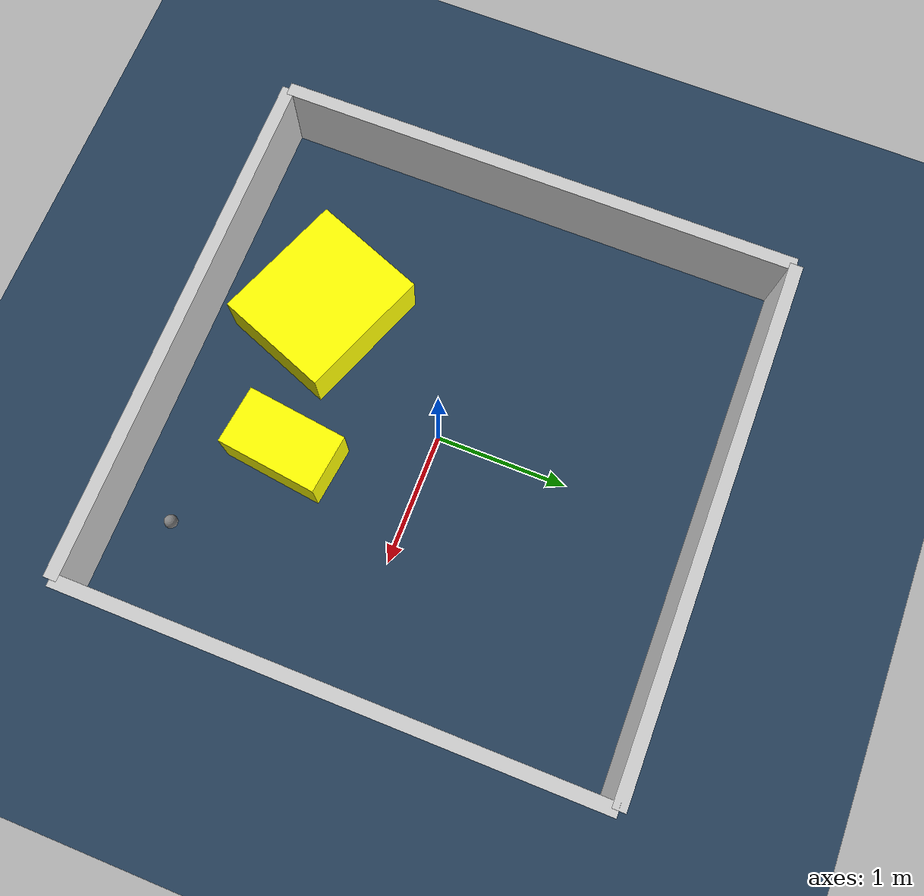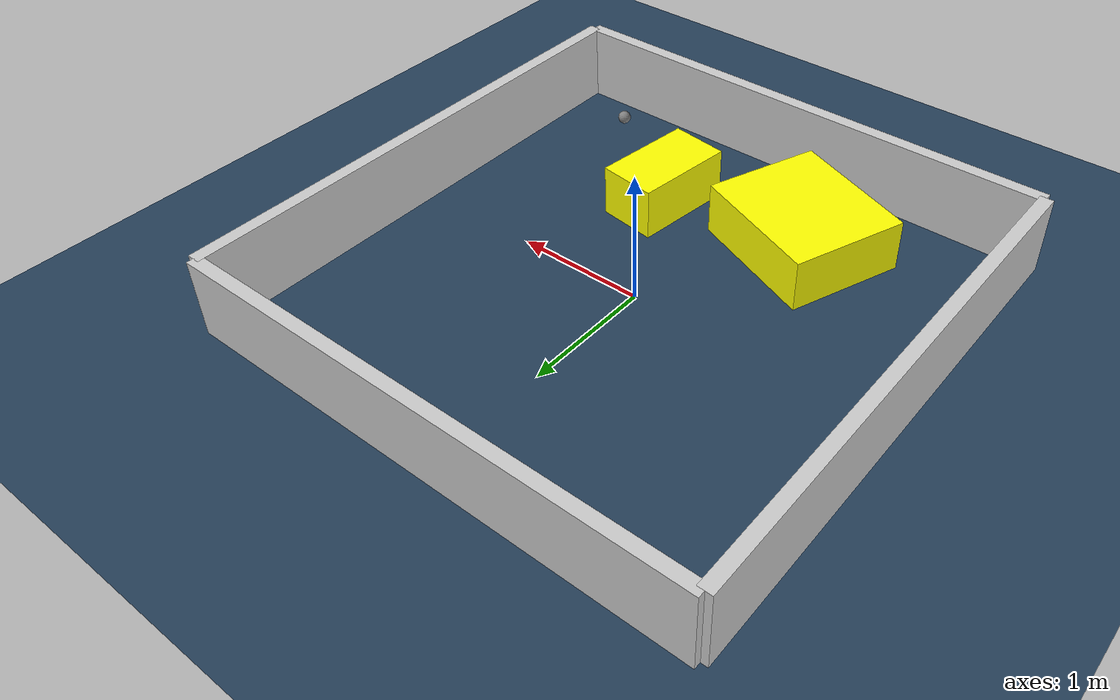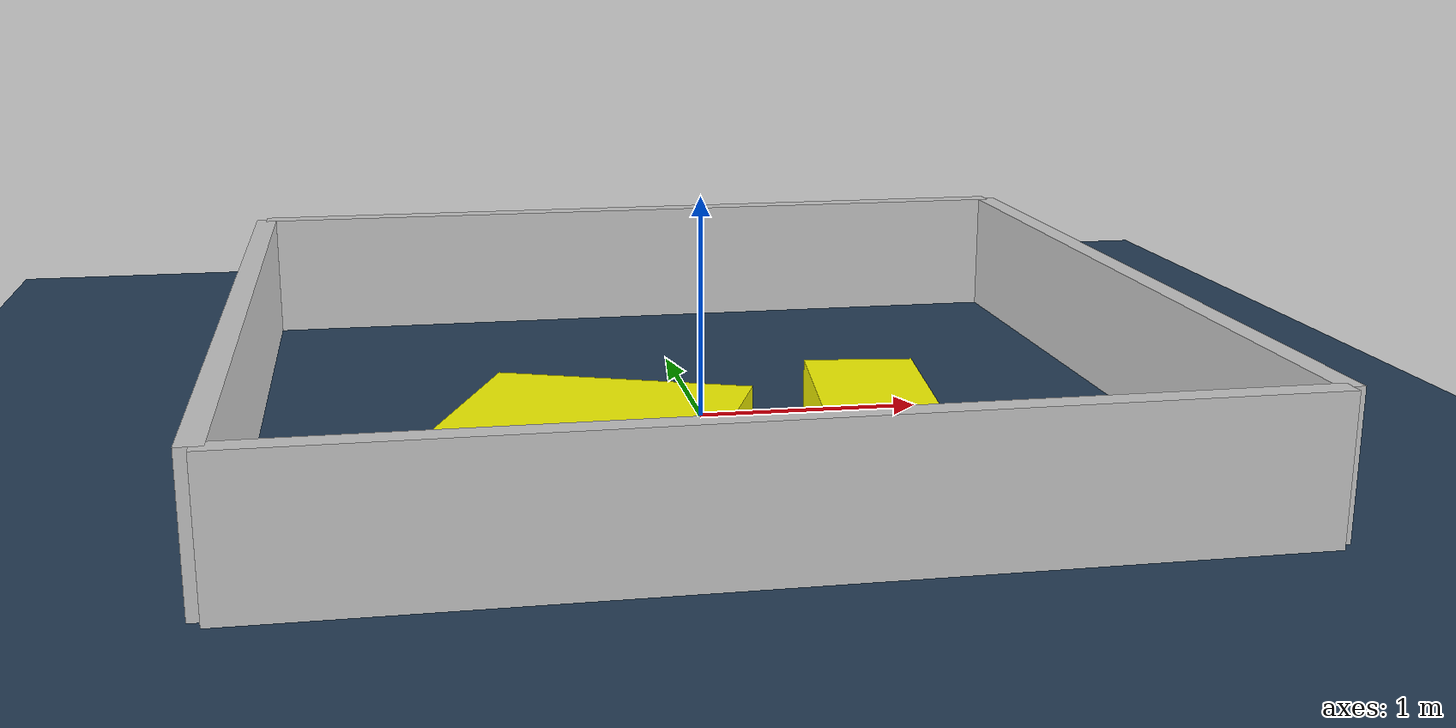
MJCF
<?xml version="1.0" ?>
<mujoco model="generated_environment">
  <option timestep="0.01" integrator="RK4" cone="elliptic"/>
  <default>
    <geom density="1"/>
  </default>
  <asset>
    <texture builtin="gradient" height="3072" rgb1="0.3 0.5 0.7" rgb2="0 0 0" type="skybox" width="512"/>
    <texture builtin="checker" height="300" mark="edge" markrgb="0.8 0.8 0.8" name="groundplane" rgb1="0.2 0.3 0.4" rgb2="0.1 0.2 0.3" type="2d" width="300"/>
    <material name="groundplane" reflectance="0.2" texrepeat="5 5" texture="groundplane" texuniform="true"/>
    <material name="robot" rgba="0.0 1.0 0.0 1"/>
  </asset>
  <worldbody>
    <light dir="0 0 -1" directional="true" pos="0 0 1.5"/>
    <geom condim="4" friction="1.0 0.005 0.001" material="groundplane" name="floor" size="0 0 0.05" type="plane"/>
    <body name="walls">
      <geom name="wall_1" condim="4" pos="-2.0 0.0 0.3" rgba="0.800000011920929 0.800000011920929 0.800000011920929 1.0" size="0.05 2.0 0.3" type="box"/>
      <geom name="wall_2" condim="4" pos="2.0 0.0 0.3" rgba="0.800000011920929 0.800000011920929 0.800000011920929 1.0" size="0.05 2.0 0.3" type="box"/>
      <geom name="wall_3" condim="4" pos="0.0 -2.0 0.3" rgba="0.800000011920929 0.800000011920929 0.800000011920929 1.0" size="2.0 0.05 0.3" type="box"/>
      <geom name="wall_4" condim="4" pos="0.0 2.0 0.3" rgba="0.800000011920929 0.800000011920929 0.800000011920929 1.0" size="2.0 0.05 0.3" type="box"/>
    </body>
    <body name="robot">
      <joint name="joint_x" type="slide" pos="0 0 0" axis="1 0 0"/>
      <joint name="joint_y" type="slide" pos="0 0 0" axis="0 1 0"/>
      <geom name="robot" type="sphere" pos="1.3162796799327512 -1.5329595829545746 0.2" size="0.05" mass="5." friction="1.0 0.005 0.0001" condim="4"/>
      <site name="sensor_ball"/>
    </body>
    <body name="obstacle_1_movable">
      <geom name="obstacle_1_movable" condim="4" pos="-0.6081901711400192 -1.169387070813106 0.2" euler="0 0 338.70245409062716" friction="1.0 0.005 0.001" rgba="1 1 0 1" size="0.5242077494431971 0.45236532747195485 0.2" type="box" mass="0.1"/>
      <joint type="free"/>
    </body>
    <body name="obstacle_2_movable">
      <geom name="obstacle_2_movable" condim="4" pos="0.5109518753229527 -0.9976988487454775 0.2" euler="0 0 82.66710621638673" friction="1.0 0.005 0.001" rgba="1 1 0 1" size="0.3884235319038014 0.2260202018634122 0.2" type="box" mass="0.1"/>
      <joint type="free"/>
    </body>
  </worldbody>
  <actuator>
    <motor name="actuator_x" joint="joint_x" gear="1" ctrlrange="-1 1"/>
    <motor name="actuator_y" joint="joint_y" gear="1" ctrlrange="-1 1"/>
  </actuator>
</mujoco>
